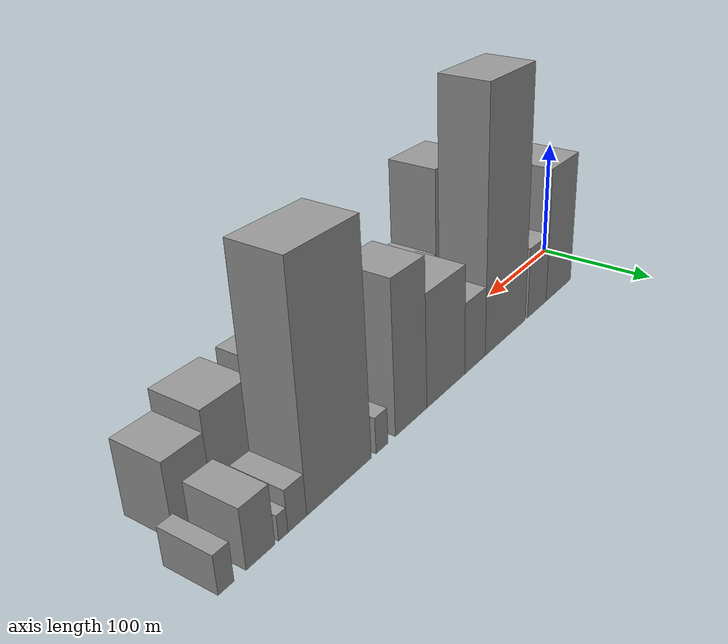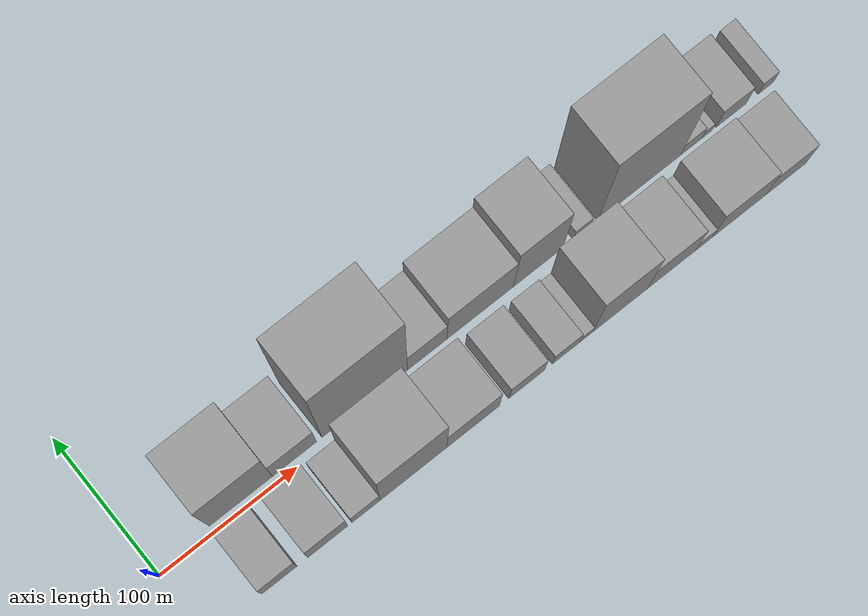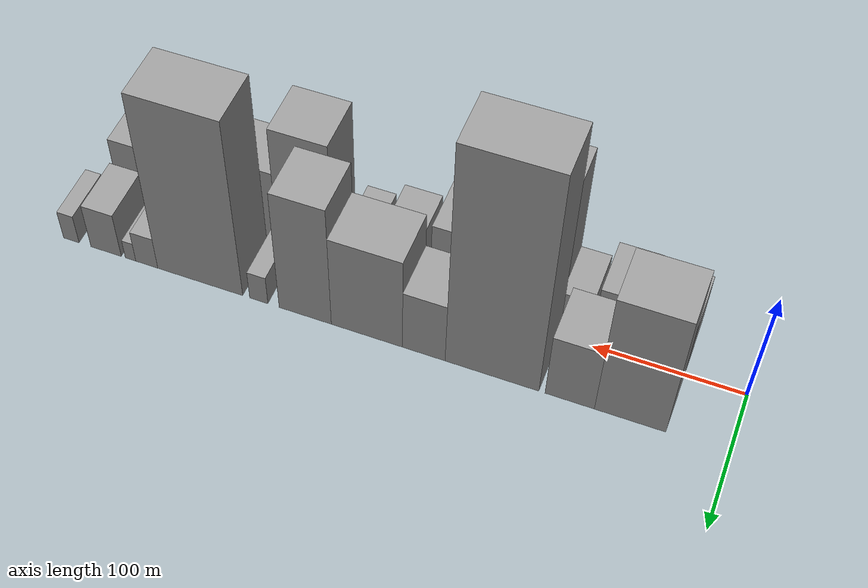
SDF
<sdf version="1.6">
 <world name="default">
  <scene>
   <sky><clouds><speed>12</speed></clouds></sky>
   <ambient>0.4 0.4 0.4 1</ambient>
   <background>0.7 0.7 0.7 1</background>
   <shadows>1</shadows>
  </scene>
  <gravity>0 0 -9.8066</gravity>
  <magnetic_field>6e-06 2.3e-05 -4.2e-05</magnetic_field>
  <physics default="0" name="default_physics" type="ode">
   <ode>
    <solver>
     <type>quick</type>
     <iters>10</iters>
     <sor>1.0</sor>
     <use_dynamic_moi_rescaling>0</use_dynamic_moi_rescaling>
    </solver>
    <constraints>
     <cfm>0</cfm>
     <erp>0.2</erp>
     <contact_max_correcting_vel>100</contact_max_correcting_vel>
     <contact_surface_layer>0.001</contact_surface_layer>
    </constraints>
   </ode>
   <max_step_size>0.004</max_step_size>
   <real_time_factor>1</real_time_factor>
   <real_time_update_rate>250</real_time_update_rate>
  </physics>
  <light name="sun" type="directional">
   <pose>0 0 10 0 0 0</pose>
   <diffuse>0.8 0.8 0.8 1</diffuse>
   <specular>0.2 0.2 0.2 1</specular>
   <attenuation>
    <range>1000</range>
    <constant>0.9</constant>
    <linear>0.01</linear>
    <quadratic>0.001</quadratic>
   </attenuation>
   <direction>-0.5 0.1 -0.9</direction>
  </light>
  <model name="building_1">
   <static>1</static>
   <pose>62.7989 24.5000 0 0.000000 0.000000 1.570796</pose>
   <link name="link">
    <pose>0 0 57.00 0 0 0</pose>
    <collision name="collision"><geometry><box><size>40.0000 45.5979 114.0000</size></box></geometry></collision>
    <visual name="visual">
     <cast_shadows>0</cast_shadows>
     <geometry><box><size>40.0000 45.5979 114.0000</size></box></geometry>
     <material>
      <script>
       <uri>model://grey_wall/materials/scripts</uri>
       <uri>model://grey_wall/materials/textures</uri>
       <name>vrc/grey_wall</name>
      </script>
     </material>
    </visual>
   </link>
  </model>
  <model name="building_2">
   <static>1</static>
   <pose>101.5984 24.5000 0 0.000000 0.000000 1.570796</pose>
   <link name="link">
    <pose>0 0 30.00 0 0 0</pose>
    <collision name="collision"><geometry><box><size>40.0000 32.0010 60.0000</size></box></geometry></collision>
    <visual name="visual">
     <cast_shadows>0</cast_shadows>
     <geometry><box><size>40.0000 32.0010 60.0000</size></box></geometry>
     <material>
      <script>
       <uri>model://grey_wall/materials/scripts</uri>
       <uri>model://grey_wall/materials/textures</uri>
       <name>vrc/grey_wall</name>
      </script>
     </material>
    </visual>
   </link>
  </model>
  <model name="building_3">
   <static>1</static>
   <pose>152.7841 24.5000 0 0.000000 0.000000 1.570796</pose>
   <link name="link">
    <pose>0 0 102.00 0 0 0</pose>
    <collision name="collision"><geometry><box><size>40.0000 62.3705 204.0000</size></box></geometry></collision>
    <visual name="visual">
     <cast_shadows>0</cast_shadows>
     <geometry><box><size>40.0000 62.3705 204.0000</size></box></geometry>
     <material>
      <script>
       <uri>model://grey_wall/materials/scripts</uri>
       <uri>model://grey_wall/materials/textures</uri>
       <name>vrc/grey_wall</name>
      </script>
     </material>
    </visual>
   </link>
  </model>
  <model name="building_4">
   <static>1</static>
   <pose>198.4600 24.5000 0 0.000000 0.000000 1.570796</pose>
   <link name="link">
    <pose>0 0 28.50 0 0 0</pose>
    <collision name="collision"><geometry><box><size>40.0000 28.9812 57.0000</size></box></geometry></collision>
    <visual name="visual">
     <cast_shadows>0</cast_shadows>
     <geometry><box><size>40.0000 28.9812 57.0000</size></box></geometry>
     <material>
      <script>
       <uri>model://grey_wall/materials/scripts</uri>
       <uri>model://grey_wall/materials/textures</uri>
       <name>vrc/grey_wall</name>
      </script>
     </material>
    </visual>
   </link>
  </model>
  <model name="building_5">
   <static>1</static>
   <pose>237.4523 24.5000 0 0.000000 0.000000 1.570796</pose>
   <link name="link">
    <pose>0 0 43.50 0 0 0</pose>
    <collision name="collision"><geometry><box><size>40.0000 49.0035 87.0000</size></box></geometry></collision>
    <visual name="visual">
     <cast_shadows>0</cast_shadows>
     <geometry><box><size>40.0000 49.0035 87.0000</size></box></geometry>
     <material>
      <script>
       <uri>model://grey_wall/materials/scripts</uri>
       <uri>model://grey_wall/materials/textures</uri>
       <name>vrc/grey_wall</name>
      </script>
     </material>
    </visual>
   </link>
  </model>
  <model name="building_6">
   <static>1</static>
   <pose>280.3207 24.5000 0 0.000000 0.000000 1.570796</pose>
   <link name="link">
    <pose>0 0 57.00 0 0 0</pose>
    <collision name="collision"><geometry><box><size>40.0000 36.7334 114.0000</size></box></geometry></collision>
    <visual name="visual">
     <cast_shadows>0</cast_shadows>
     <geometry><box><size>40.0000 36.7334 114.0000</size></box></geometry>
     <material>
      <script>
       <uri>model://grey_wall/materials/scripts</uri>
       <uri>model://grey_wall/materials/textures</uri>
       <name>vrc/grey_wall</name>
      </script>
     </material>
    </visual>
   </link>
  </model>
  <model name="building_7">
   <static>1</static>
   <pose>313.1834 24.5000 0 0.000000 0.000000 1.570796</pose>
   <link name="link">
    <pose>0 0 13.50 0 0 0</pose>
    <collision name="collision"><geometry><box><size>40.0000 12.9920 27.0000</size></box></geometry></collision>
    <visual name="visual">
     <cast_shadows>0</cast_shadows>
     <geometry><box><size>40.0000 12.9920 27.0000</size></box></geometry>
     <material>
      <script>
       <uri>model://grey_wall/materials/scripts</uri>
       <uri>model://grey_wall/materials/textures</uri>
       <name>vrc/grey_wall</name>
      </script>
     </material>
    </visual>
   </link>
  </model>
  <model name="building_8">
   <static>1</static>
   <pose>355.6278 24.5000 0 0.000000 0.000000 1.570796</pose>
   <link name="link">
    <pose>0 0 82.50 0 0 0</pose>
    <collision name="collision"><geometry><box><size>40.0000 61.8968 165.0000</size></box></geometry></collision>
    <visual name="visual">
     <cast_shadows>0</cast_shadows>
     <geometry><box><size>40.0000 61.8968 165.0000</size></box></geometry>
     <material>
      <script>
       <uri>model://grey_wall/materials/scripts</uri>
       <uri>model://grey_wall/materials/textures</uri>
       <name>vrc/grey_wall</name>
      </script>
     </material>
    </visual>
   </link>
  </model>
  <model name="building_9">
   <static>1</static>
   <pose>394.6969 24.5000 0 0.000000 0.000000 1.570796</pose>
   <link name="link">
    <pose>0 0 15.00 0 0 0</pose>
    <collision name="collision"><geometry><box><size>40.0000 16.2416 30.0000</size></box></geometry></collision>
    <visual name="visual">
     <cast_shadows>0</cast_shadows>
     <geometry><box><size>40.0000 16.2416 30.0000</size></box></geometry>
     <material>
      <script>
       <uri>model://grey_wall/materials/scripts</uri>
       <uri>model://grey_wall/materials/textures</uri>
       <name>vrc/grey_wall</name>
      </script>
     </material>
    </visual>
   </link>
  </model>
  <model name="building_10">
   <static>1</static>
   <pose>406.7165 24.5000 0 0.000000 0.000000 1.570796</pose>
   <link name="link">
    <pose>0 0 9.00 0 0 0</pose>
    <collision name="collision"><geometry><box><size>40.0000 7.7976 18.0000</size></box></geometry></collision>
    <visual name="visual">
     <cast_shadows>0</cast_shadows>
     <geometry><box><size>40.0000 7.7976 18.0000</size></box></geometry>
     <material>
      <script>
       <uri>model://grey_wall/materials/scripts</uri>
       <uri>model://grey_wall/materials/textures</uri>
       <name>vrc/grey_wall</name>
      </script>
     </material>
    </visual>
   </link>
  </model>
  <model name="building_11">
   <static>1</static>
   <pose>424.9896 24.5000 0 0.000000 0.000000 1.570796</pose>
   <link name="link">
    <pose>0 0 21.00 0 0 0</pose>
    <collision name="collision"><geometry><box><size>40.0000 22.7486 42.0000</size></box></geometry></collision>
    <visual name="visual">
     <cast_shadows>0</cast_shadows>
     <geometry><box><size>40.0000 22.7486 42.0000</size></box></geometry>
     <material>
      <script>
       <uri>model://grey_wall/materials/scripts</uri>
       <uri>model://grey_wall/materials/textures</uri>
       <name>vrc/grey_wall</name>
      </script>
     </material>
    </visual>
   </link>
  </model>
  <model name="building_12">
   <static>1</static>
   <pose>451.2138 24.5000 0 0.000000 0.000000 1.570796</pose>
   <link name="link">
    <pose>0 0 13.50 0 0 0</pose>
    <collision name="collision"><geometry><box><size>40.0000 11.6997 27.0000</size></box></geometry></collision>
    <visual name="visual">
     <cast_shadows>0</cast_shadows>
     <geometry><box><size>40.0000 11.6997 27.0000</size></box></geometry>
     <material>
      <script>
       <uri>model://grey_wall/materials/scripts</uri>
       <uri>model://grey_wall/materials/textures</uri>
       <name>vrc/grey_wall</name>
      </script>
     </material>
    </visual>
   </link>
  </model>
  <model name="building_13">
   <static>1</static>
   <pose>52.5871 -24.5000 0 0.000000 0.000000 1.570796</pose>
   <link name="link">
    <pose>0 0 24.00 0 0 0</pose>
    <collision name="collision"><geometry><box><size>40.0000 25.1742 48.0000</size></box></geometry></collision>
    <visual name="visual">
     <cast_shadows>0</cast_shadows>
     <geometry><box><size>40.0000 25.1742 48.0000</size></box></geometry>
     <material>
      <script>
       <uri>model://grey_wall/materials/scripts</uri>
       <uri>model://grey_wall/materials/textures</uri>
       <name>vrc/grey_wall</name>
      </script>
     </material>
    </visual>
   </link>
  </model>
  <model name="building_14">
   <static>1</static>
   <pose>87.5404 -24.5000 0 0.000000 0.000000 1.570796</pose>
   <link name="link">
    <pose>0 0 27.00 0 0 0</pose>
    <collision name="collision"><geometry><box><size>40.0000 28.7324 54.0000</size></box></geometry></collision>
    <visual name="visual">
     <cast_shadows>0</cast_shadows>
     <geometry><box><size>40.0000 28.7324 54.0000</size></box></geometry>
     <material>
      <script>
       <uri>model://grey_wall/materials/scripts</uri>
       <uri>model://grey_wall/materials/textures</uri>
       <name>vrc/grey_wall</name>
      </script>
     </material>
    </visual>
   </link>
  </model>
  <model name="building_15">
   <static>1</static>
   <pose>115.1558 -24.5000 0 0.000000 0.000000 1.570796</pose>
   <link name="link">
    <pose>0 0 19.50 0 0 0</pose>
    <collision name="collision"><geometry><box><size>40.0000 20.4984 39.0000</size></box></geometry></collision>
    <visual name="visual">
     <cast_shadows>0</cast_shadows>
     <geometry><box><size>40.0000 20.4984 39.0000</size></box></geometry>
     <material>
      <script>
       <uri>model://grey_wall/materials/scripts</uri>
       <uri>model://grey_wall/materials/textures</uri>
       <name>vrc/grey_wall</name>
      </script>
     </material>
    </visual>
   </link>
  </model>
  <model name="building_16">
   <static>1</static>
   <pose>149.6265 -24.5000 0 0.000000 0.000000 1.570796</pose>
   <link name="link">
    <pose>0 0 66.00 0 0 0</pose>
    <collision name="collision"><geometry><box><size>40.0000 48.4431 132.0000</size></box></geometry></collision>
    <visual name="visual">
     <cast_shadows>0</cast_shadows>
     <geometry><box><size>40.0000 48.4431 132.0000</size></box></geometry>
     <material>
      <script>
       <uri>model://grey_wall/materials/scripts</uri>
       <uri>model://grey_wall/materials/textures</uri>
       <name>vrc/grey_wall</name>
      </script>
     </material>
    </visual>
   </link>
  </model>
  <model name="building_17">
   <static>1</static>
   <pose>193.1631 -24.5000 0 0.000000 0.000000 1.570796</pose>
   <link name="link">
    <pose>0 0 33.00 0 0 0</pose>
    <collision name="collision"><geometry><box><size>40.0000 38.6301 66.0000</size></box></geometry></collision>
    <visual name="visual">
     <cast_shadows>0</cast_shadows>
     <geometry><box><size>40.0000 38.6301 66.0000</size></box></geometry>
     <material>
      <script>
       <uri>model://grey_wall/materials/scripts</uri>
       <uri>model://grey_wall/materials/textures</uri>
       <name>vrc/grey_wall</name>
      </script>
     </material>
    </visual>
   </link>
  </model>
  <model name="building_18">
   <static>1</static>
   <pose>232.5741 -24.5000 0 0.000000 0.000000 1.570796</pose>
   <link name="link">
    <pose>0 0 24.00 0 0 0</pose>
    <collision name="collision"><geometry><box><size>40.0000 26.1918 48.0000</size></box></geometry></collision>
    <visual name="visual">
     <cast_shadows>0</cast_shadows>
     <geometry><box><size>40.0000 26.1918 48.0000</size></box></geometry>
     <material>
      <script>
       <uri>model://grey_wall/materials/scripts</uri>
       <uri>model://grey_wall/materials/textures</uri>
       <name>vrc/grey_wall</name>
      </script>
     </material>
    </visual>
   </link>
  </model>
  <model name="building_19">
   <static>1</static>
   <pose>261.7721 -24.5000 0 0.000000 0.000000 1.570796</pose>
   <link name="link">
    <pose>0 0 18.00 0 0 0</pose>
    <collision name="collision"><geometry><box><size>40.0000 20.2042 36.0000</size></box></geometry></collision>
    <visual name="visual">
     <cast_shadows>0</cast_shadows>
     <geometry><box><size>40.0000 20.2042 36.0000</size></box></geometry>
     <material>
      <script>
       <uri>model://grey_wall/materials/scripts</uri>
       <uri>model://grey_wall/materials/textures</uri>
       <name>vrc/grey_wall</name>
      </script>
     </material>
    </visual>
   </link>
  </model>
  <model name="building_20">
   <static>1</static>
   <pose>276.6517 -24.5000 0 0.000000 0.000000 1.570796</pose>
   <link name="link">
    <pose>0 0 10.50 0 0 0</pose>
    <collision name="collision"><geometry><box><size>40.0000 9.5551 21.0000</size></box></geometry></collision>
    <visual name="visual">
     <cast_shadows>0</cast_shadows>
     <geometry><box><size>40.0000 9.5551 21.0000</size></box></geometry>
     <material>
      <script>
       <uri>model://grey_wall/materials/scripts</uri>
       <uri>model://grey_wall/materials/textures</uri>
       <name>vrc/grey_wall</name>
      </script>
     </material>
    </visual>
   </link>
  </model>
  <model name="building_21">
   <static>1</static>
   <pose>301.5318 -24.5000 0 0.000000 0.000000 1.570796</pose>
   <link name="link">
    <pose>0 0 55.50 0 0 0</pose>
    <collision name="collision"><geometry><box><size>40.0000 40.2051 111.0000</size></box></geometry></collision>
    <visual name="visual">
     <cast_shadows>0</cast_shadows>
     <geometry><box><size>40.0000 40.2051 111.0000</size></box></geometry>
     <material>
      <script>
       <uri>model://grey_wall/materials/scripts</uri>
       <uri>model://grey_wall/materials/textures</uri>
       <name>vrc/grey_wall</name>
      </script>
     </material>
    </visual>
   </link>
  </model>
  <model name="building_22">
   <static>1</static>
   <pose>339.6920 -24.5000 0 0.000000 0.000000 1.570796</pose>
   <link name="link">
    <pose>0 0 34.50 0 0 0</pose>
    <collision name="collision"><geometry><box><size>40.0000 36.1153 69.0000</size></box></geometry></collision>
    <visual name="visual">
     <cast_shadows>0</cast_shadows>
     <geometry><box><size>40.0000 36.1153 69.0000</size></box></geometry>
     <material>
      <script>
       <uri>model://grey_wall/materials/scripts</uri>
       <uri>model://grey_wall/materials/textures</uri>
       <name>vrc/grey_wall</name>
      </script>
     </material>
    </visual>
   </link>
  </model>
  <model name="building_23">
   <static>1</static>
   <pose>364.2765 -24.5000 0 0.000000 0.000000 1.570796</pose>
   <link name="link">
    <pose>0 0 13.50 0 0 0</pose>
    <collision name="collision"><geometry><box><size>40.0000 13.0538 27.0000</size></box></geometry></collision>
    <visual name="visual">
     <cast_shadows>0</cast_shadows>
     <geometry><box><size>40.0000 13.0538 27.0000</size></box></geometry>
     <material>
      <script>
       <uri>model://grey_wall/materials/scripts</uri>
       <uri>model://grey_wall/materials/textures</uri>
       <name>vrc/grey_wall</name>
      </script>
     </material>
    </visual>
   </link>
  </model>
  <model name="building_24">
   <static>1</static>
   <pose>390.6673 -24.5000 0 0.000000 0.000000 1.570796</pose>
   <link name="link">
    <pose>0 0 34.50 0 0 0</pose>
    <collision name="collision"><geometry><box><size>40.0000 39.7278 69.0000</size></box></geometry></collision>
    <visual name="visual">
     <cast_shadows>0</cast_shadows>
     <geometry><box><size>40.0000 39.7278 69.0000</size></box></geometry>
     <material>
      <script>
       <uri>model://grey_wall/materials/scripts</uri>
       <uri>model://grey_wall/materials/textures</uri>
       <name>vrc/grey_wall</name>
      </script>
     </material>
    </visual>
   </link>
  </model>
  <model name="building_25">
   <static>1</static>
   <pose>425.7259 -24.5000 0 0.000000 0.000000 1.570796</pose>
   <link name="link">
    <pose>0 0 27.00 0 0 0</pose>
    <collision name="collision"><geometry><box><size>40.0000 30.3894 54.0000</size></box></geometry></collision>
    <visual name="visual">
     <cast_shadows>0</cast_shadows>
     <geometry><box><size>40.0000 30.3894 54.0000</size></box></geometry>
     <material>
      <script>
       <uri>model://grey_wall/materials/scripts</uri>
       <uri>model://grey_wall/materials/textures</uri>
       <name>vrc/grey_wall</name>
      </script>
     </material>
    </visual>
   </link>
  </model>
 </world>
</sdf>
